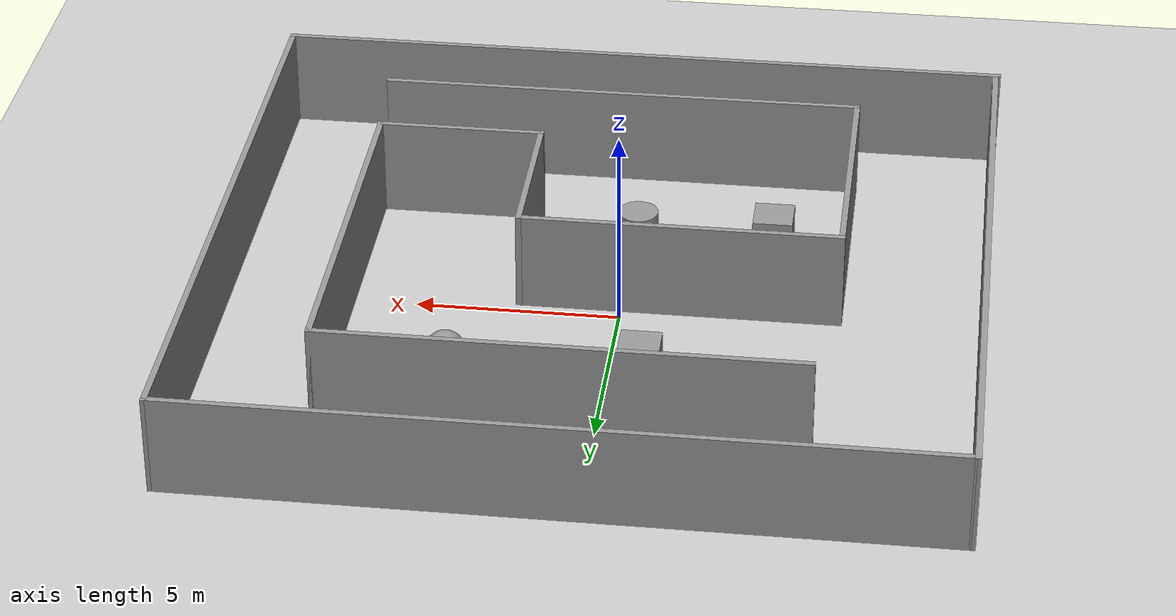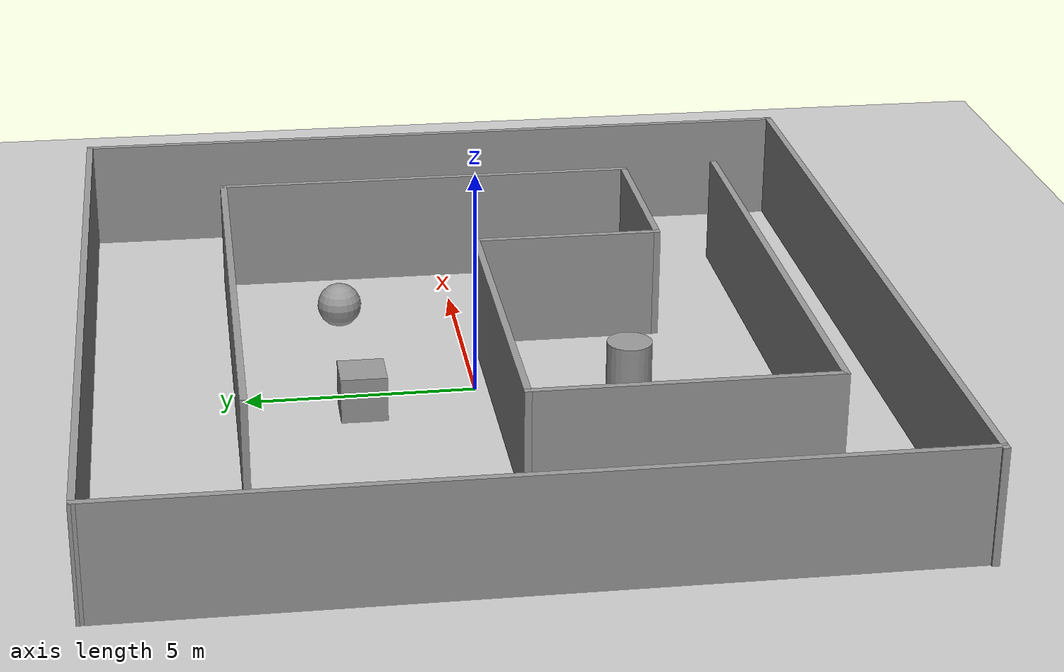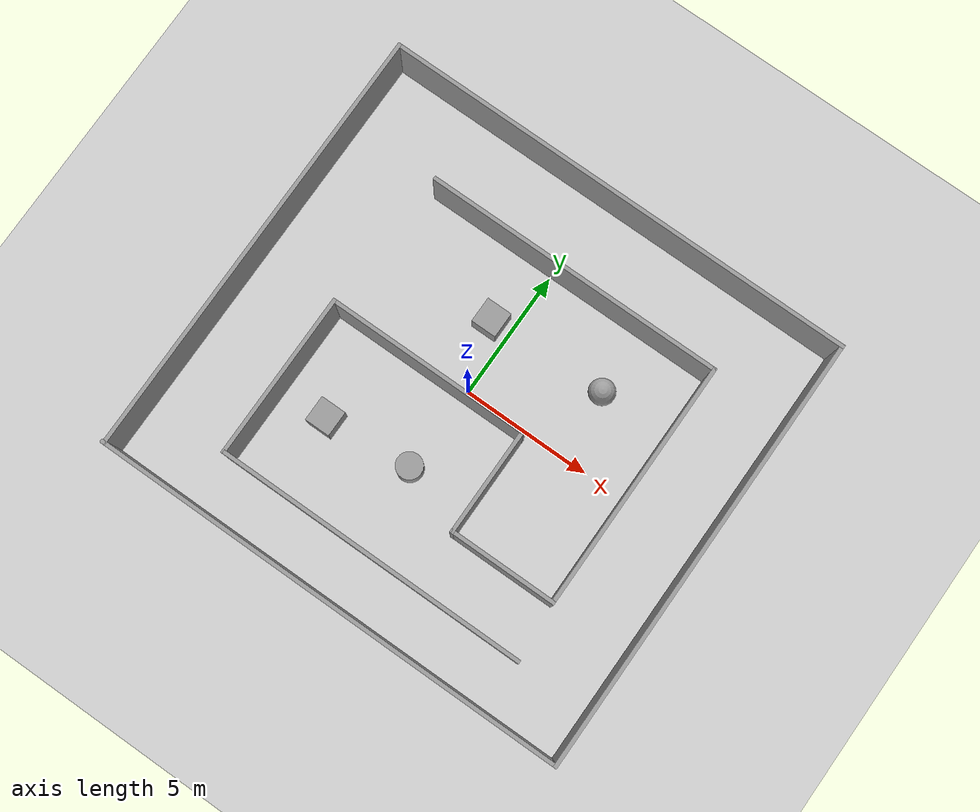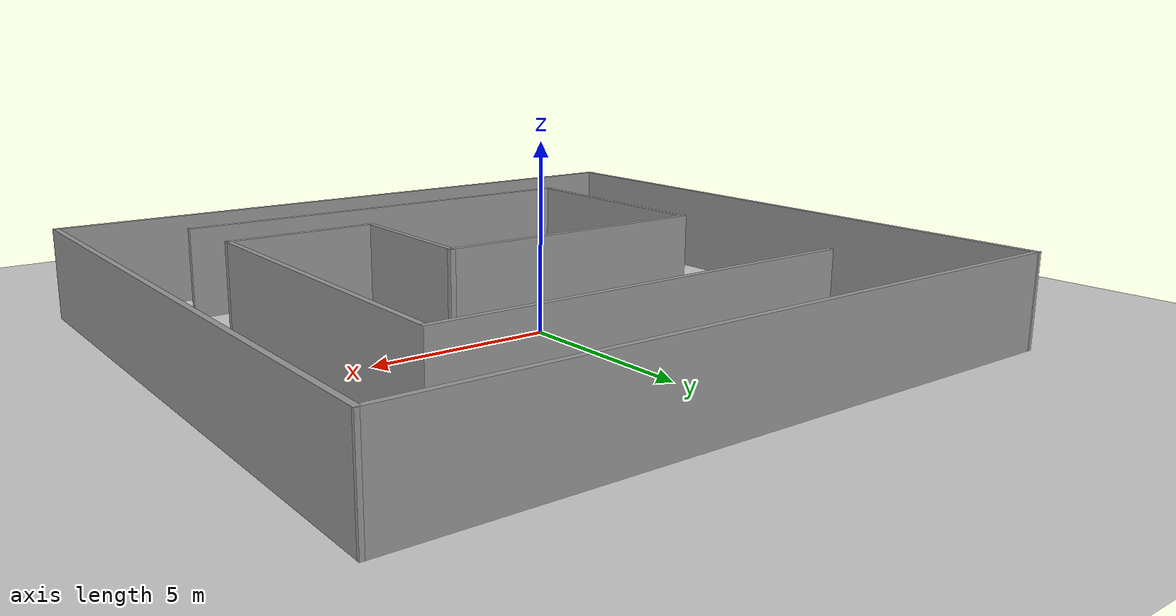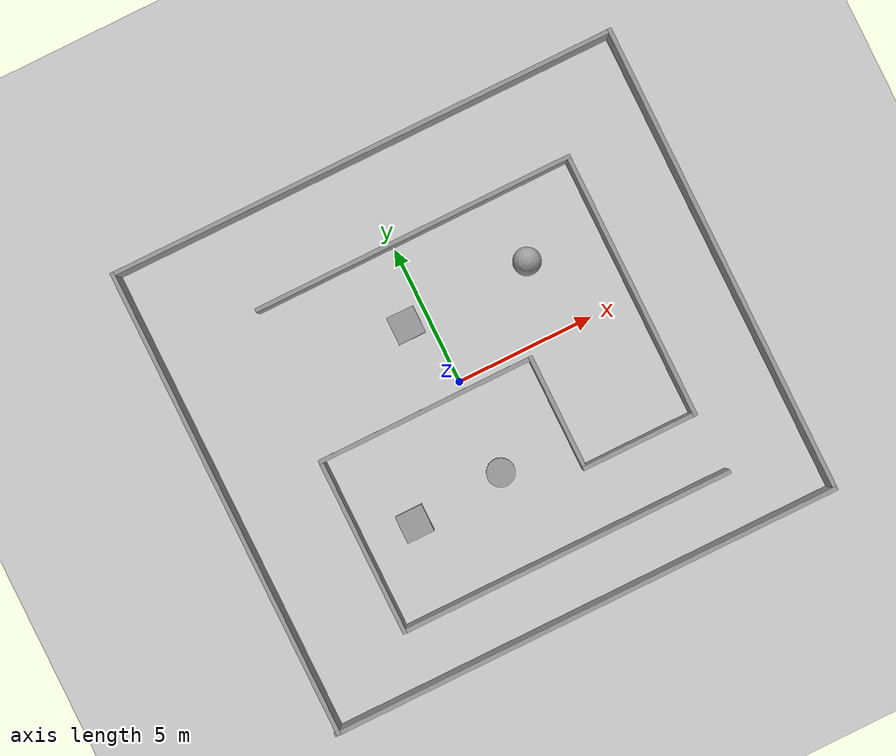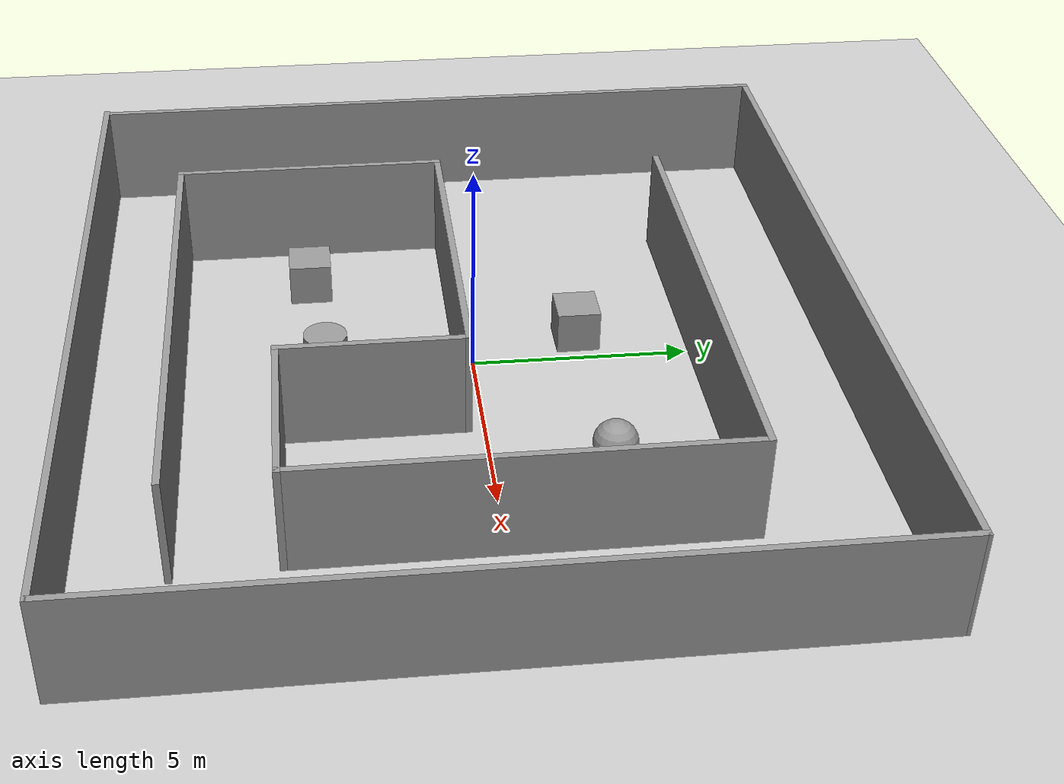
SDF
<sdf version="1.7">
 <world name="default">
  <light name="sun" type="directional">
   <pose>0 0 10 0 -0 0</pose>
   <diffuse>0.8 0.8 0.8 1</diffuse>
   <specular>0.2 0.2 0.2 1</specular>
   <attenuation>
    <range>1000</range>
    <constant>0.9</constant>
    <linear>0.01</linear>
    <quadratic>0.001</quadratic>
   </attenuation>
   <direction>-0.5 0.1 -0.9</direction>
   <spot><inner_angle>0</inner_angle><outer_angle>0</outer_angle><falloff>0</falloff></spot>
  </light>
  <model name="ground_plane">
   <static>1</static>
   <link name="link">
    <collision name="collision">
     <geometry><plane><normal>0 0 1</normal><size>100 100</size></plane></geometry>
     <surface>
      <contact><collide_bitmask>65535</collide_bitmask></contact>
      <friction><ode><mu>100</mu><mu2>50</mu2></ode></friction>
     </surface>
    </collision>
    <visual name="visual">
     <cast_shadows>0</cast_shadows>
     <geometry><plane><normal>0 0 1</normal><size>100 100</size></plane></geometry>
     <material>
      <script><uri>file://media/materials/scripts/gazebo.material</uri><name>Gazebo/Grey</name></script>
     </material>
    </visual>
   </link>
  </model>
  <gravity>0 0 -9.8</gravity>
  <magnetic_field>6e-06 2.3e-05 -4.2e-05</magnetic_field>
  <atmosphere type="adiabatic"/>
  <physics type="ode">
   <max_step_size>0.001</max_step_size>
   <real_time_factor>1</real_time_factor>
   <real_time_update_rate>1000</real_time_update_rate>
  </physics>
  <scene><ambient>0.4 0.4 0.4 1</ambient><background>0.7 0.7 0.7 1</background><shadows>1</shadows></scene>
  <audio><device>default</device></audio>
  <spherical_coordinates>
   <surface_model>EARTH_WGS84</surface_model>
   <latitude_deg>0</latitude_deg>
   <longitude_deg>0</longitude_deg>
   <elevation>0</elevation>
   <heading_deg>0</heading_deg>
  </spherical_coordinates>
  <model name="world1">
   <pose>0.410855 -0.213693 0 0 -0 0</pose>
   <link name="Wall_17">
    <collision name="Wall_17_Collision">
     <geometry><box><size>17.25 0.15 2.5</size></box></geometry>
     <pose>0 0 1.25 0 -0 0</pose>
    </collision>
    <visual name="Wall_17_Visual">
     <pose>0 0 1.25 0 -0 0</pose>
     <geometry><box><size>17.25 0.15 2.5</size></box></geometry>
     <material>
      <script><uri>file://media/materials/scripts/gazebo.material</uri><name>Gazebo/Grey</name></script>
      <ambient>1 1 1 1</ambient>
     </material>
     <meta><layer>0</layer></meta>
    </visual>
    <pose>-9.24338 0.009328 0 0 -0 -1.5708</pose>
   </link>
   <link name="Wall_19">
    <collision name="Wall_19_Collision">
     <geometry><box><size>18.75 0.15 2.5</size></box></geometry>
     <pose>0 0 1.25 0 -0 0</pose>
    </collision>
    <visual name="Wall_19_Visual">
     <pose>0 0 1.25 0 -0 0</pose>
     <geometry><box><size>18.75 0.15 2.5</size></box></geometry>
     <material>
      <script><uri>file://media/materials/scripts/gazebo.material</uri><name>Gazebo/Grey</name></script>
      <ambient>1 1 1 1</ambient>
     </material>
     <meta><layer>0</layer></meta>
    </visual>
    <pose>-3.8e-05 -8.5594 0 0 -0 0</pose>
   </link>
   <link name="Wall_21">
    <collision name="Wall_21_Collision">
     <geometry><box><size>17.25 0.15 2.5</size></box></geometry>
     <pose>0 0 1.25 0 -0 0</pose>
    </collision>
    <visual name="Wall_21_Visual">
     <pose>0 0 1.25 0 -0 0</pose>
     <geometry><box><size>17.25 0.15 2.5</size></box></geometry>
     <material>
      <script><uri>file://media/materials/scripts/gazebo.material</uri><name>Gazebo/Grey</name></script>
      <ambient>1 1 1 1</ambient>
     </material>
     <meta><layer>0</layer></meta>
    </visual>
    <pose>9.29996 -0.009402 0 0 -0 1.5708</pose>
   </link>
   <link name="Wall_22">
    <collision name="Wall_22_Collision">
     <geometry><box><size>18.6933 0.15 2.5</size></box></geometry>
     <pose>0 0 1.25 0 -0 0</pose>
    </collision>
    <visual name="Wall_22_Visual">
     <pose>0 0 1.25 0 -0 0</pose>
     <geometry><box><size>18.6933 0.15 2.5</size></box></geometry>
     <material>
      <script><uri>file://media/materials/scripts/gazebo.material</uri><name>Gazebo/Grey</name></script>
      <ambient>1 1 1 1</ambient>
     </material>
     <meta><layer>0</layer></meta>
    </visual>
    <pose>0.028292 8.54996 0 0 -0 3.14058</pose>
   </link>
   <link name="Wall_24">
    <collision name="Wall_24_Collision">
     <geometry><box><size>11.75 0.15 2.5</size></box></geometry>
     <pose>0 0 1.25 0 -0 0</pose>
    </collision>
    <visual name="Wall_24_Visual">
     <pose>0 0 1.25 0 -0 0</pose>
     <geometry><box><size>11.75 0.15 2.5</size></box></geometry>
     <material>
      <script><uri>file://media/materials/scripts/gazebo.material</uri><name>Gazebo/Grey</name></script>
      <ambient>1 1 1 1</ambient>
     </material>
     <meta><layer>0</layer></meta>
    </visual>
    <pose>0.38722 5.36539 0 0 -0 0</pose>
   </link>
   <link name="Wall_25">
    <collision name="Wall_25_Collision">
     <geometry><box><size>9.75 0.15 2.5</size></box></geometry>
     <pose>0 0 1.25 0 -0 0</pose>
    </collision>
    <visual name="Wall_25_Visual">
     <pose>0 0 1.25 0 -0 0</pose>
     <geometry><box><size>9.75 0.15 2.5</size></box></geometry>
     <material>
      <script><uri>file://media/materials/scripts/gazebo.material</uri><name>Gazebo/Grey</name></script>
      <ambient>1 1 1 1</ambient>
     </material>
     <meta><layer>0</layer></meta>
    </visual>
    <pose>6.18722 0.565388 0 0 -0 -1.5708</pose>
   </link>
   <link name="Wall_26">
    <collision name="Wall_26_Collision">
     <geometry><box><size>4.25 0.15 2.5</size></box></geometry>
     <pose>0 0 1.25 0 -0 0</pose>
    </collision>
    <visual name="Wall_26_Visual">
     <pose>0 0 1.25 0 -0 0</pose>
     <geometry><box><size>4.25 0.15 2.5</size></box></geometry>
     <material>
      <script><uri>file://media/materials/scripts/gazebo.material</uri><name>Gazebo/Grey</name></script>
      <ambient>1 1 1 1</ambient>
     </material>
     <meta><layer>0</layer></meta>
    </visual>
    <pose>4.13722 -4.23461 0 0 -0 3.14159</pose>
   </link>
   <link name="Wall_27">
    <collision name="Wall_27_Collision">
     <geometry><box><size>4.25 0.15 2.5</size></box></geometry>
     <pose>0 0 1.25 0 -0 0</pose>
    </collision>
    <visual name="Wall_27_Visual">
     <pose>0 0 1.25 0 -0 0</pose>
     <geometry><box><size>4.25 0.15 2.5</size></box></geometry>
     <material>
      <script><uri>file://media/materials/scripts/gazebo.material</uri><name>Gazebo/Grey</name></script>
      <ambient>1 1 1 1</ambient>
     </material>
     <meta><layer>0</layer></meta>
    </visual>
    <pose>2.08722 -2.18461 0 0 -0 1.5708</pose>
   </link>
   <link name="Wall_28">
    <collision name="Wall_28_Collision">
     <geometry><box><size>8 0.15 2.5</size></box></geometry>
     <pose>0 0 1.25 0 -0 0</pose>
    </collision>
    <visual name="Wall_28_Visual">
     <pose>0 0 1.25 0 -0 0</pose>
     <geometry><box><size>8 0.15 2.5</size></box></geometry>
     <material>
      <script><uri>file://media/materials/scripts/gazebo.material</uri><name>Gazebo/Grey</name></script>
      <ambient>1 1 1 1</ambient>
     </material>
     <meta><layer>0</layer></meta>
    </visual>
    <pose>-1.83778 -0.134612 0 0 -0 3.14159</pose>
   </link>
   <link name="Wall_29">
    <collision name="Wall_29_Collision">
     <geometry><box><size>6.5 0.15 2.5</size></box></geometry>
     <pose>0 0 1.25 0 -0 0</pose>
    </collision>
    <visual name="Wall_29_Visual">
     <pose>0 0 1.25 0 -0 0</pose>
     <geometry><box><size>6.5 0.15 2.5</size></box></geometry>
     <material>
      <script><uri>file://media/materials/scripts/gazebo.material</uri><name>Gazebo/Grey</name></script>
      <ambient>1 1 1 1</ambient>
     </material>
     <meta><layer>0</layer></meta>
    </visual>
    <pose>-5.76278 -3.30961 0 0 -0 -1.5708</pose>
   </link>
   <link name="Wall_30">
    <collision name="Wall_30_Collision">
     <geometry><box><size>12.25 0.15 2.5</size></box></geometry>
     <pose>0 0 1.25 0 -0 0</pose>
    </collision>
    <visual name="Wall_30_Visual">
     <pose>0 0 1.25 0 -0 0</pose>
     <geometry><box><size>12.25 0.15 2.5</size></box></geometry>
     <material>
      <script><uri>file://media/materials/scripts/gazebo.material</uri><name>Gazebo/Grey</name></script>
      <ambient>1 1 1 1</ambient>
     </material>
     <meta><layer>0</layer></meta>
    </visual>
    <pose>0.28722 -6.48461 0 0 -0 0</pose>
   </link>
   <static>1</static>
  </model>
  <model name="unit_box">
   <pose>-0.78476 2.52493 0.499995 -1e-05 -0 -0</pose>
   <link name="link">
    <inertial>
     <mass>1</mass>
     <inertia>
      <ixx>0.166667</ixx>
      <ixy>0</ixy>
      <ixz>0</ixz>
      <iyy>0.166667</iyy>
      <iyz>0</iyz>
      <izz>0.166667</izz>
     </inertia>
    </inertial>
    <collision name="collision"><geometry><box><size>1 1 1</size></box></geometry></collision>
    <visual name="visual">
     <geometry><box><size>1 1 1</size></box></geometry>
     <material>
      <script><name>Gazebo/Grey</name><uri>file://media/materials/scripts/gazebo.material</uri></script>
     </material>
    </visual>
   </link>
  </model>
  <model name="unit_sphere">
   <pose>3.86327 2.66376 0.5 0 -0 0</pose>
   <link name="link">
    <inertial>
     <mass>1</mass>
     <inertia><ixx>0.1</ixx><ixy>0</ixy><ixz>0</ixz><iyy>0.1</iyy><iyz>0</iyz><izz>0.1</izz></inertia>
    </inertial>
    <collision name="collision"><geometry><sphere><radius>0.5</radius></sphere></geometry></collision>
    <visual name="visual">
     <geometry><sphere><radius>0.5</radius></sphere></geometry>
     <material>
      <script><name>Gazebo/Grey</name><uri>file://media/materials/scripts/gazebo.material</uri></script>
     </material>
    </visual>
   </link>
  </model>
  <model name="unit_box_0">
   <pose>-3.49371 -3.65145 0.499995 -1e-05 -0 0</pose>
   <link name="link">
    <inertial>
     <mass>1</mass>
     <inertia>
      <ixx>0.166667</ixx>
      <ixy>0</ixy>
      <ixz>0</ixz>
      <iyy>0.166667</iyy>
      <iyz>0</iyz>
      <izz>0.166667</izz>
     </inertia>
    </inertial>
    <collision name="collision"><geometry><box><size>1 1 1</size></box></geometry></collision>
    <visual name="visual">
     <geometry><box><size>1 1 1</size></box></geometry>
     <material>
      <script><name>Gazebo/Grey</name><uri>file://media/materials/scripts/gazebo.material</uri></script>
     </material>
    </visual>
   </link>
  </model>
  <model name="unit_cylinder">
   <pose>-0.103263 -3.38008 0.499997 3e-06 4e-06 -0</pose>
   <link name="link">
    <inertial>
     <mass>1</mass>
     <inertia><ixx>0.145833</ixx><ixy>0</ixy><ixz>0</ixz><iyy>0.145833</iyy><iyz>0</iyz><izz>0.125</izz></inertia>
    </inertial>
    <collision name="collision">
     <geometry><cylinder><radius>0.5</radius><length>1</length></cylinder></geometry>
    </collision>
    <visual name="visual">
     <geometry><cylinder><radius>0.5</radius><length>1</length></cylinder></geometry>
     <material>
      <script><name>Gazebo/Grey</name><uri>file://media/materials/scripts/gazebo.material</uri></script>
     </material>
    </visual>
   </link>
  </model>
 </world>
</sdf>
